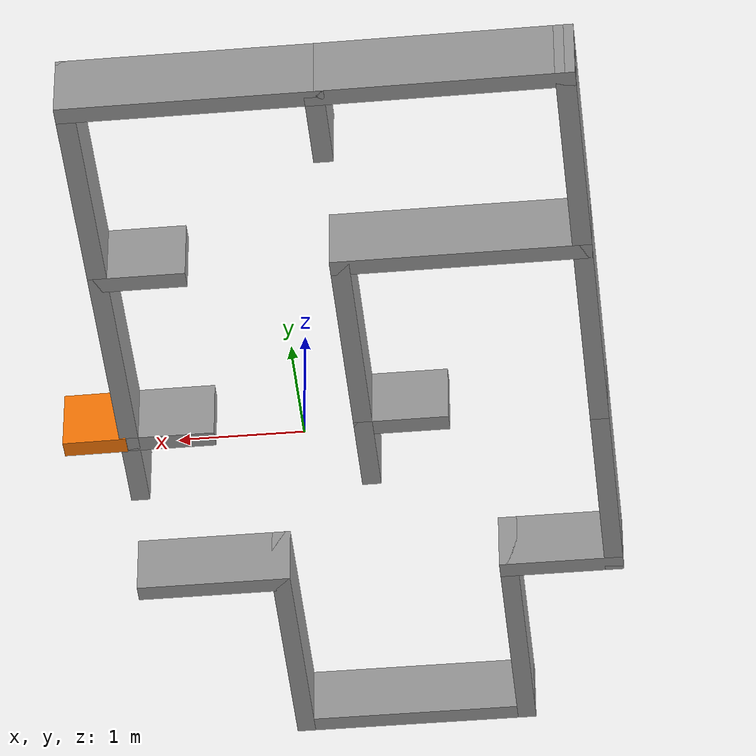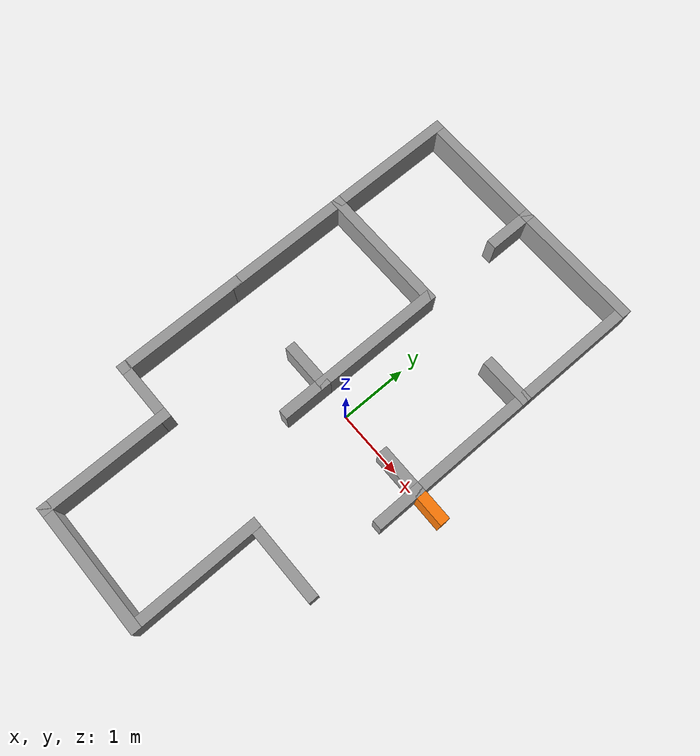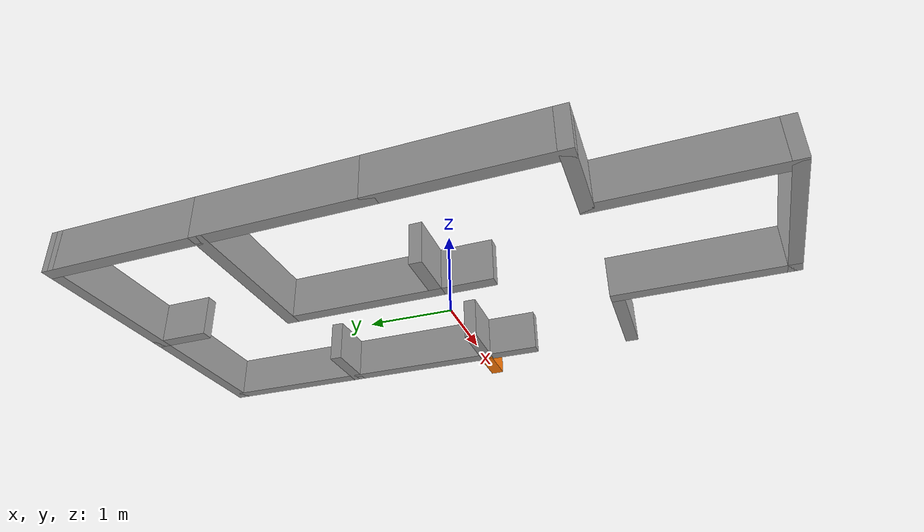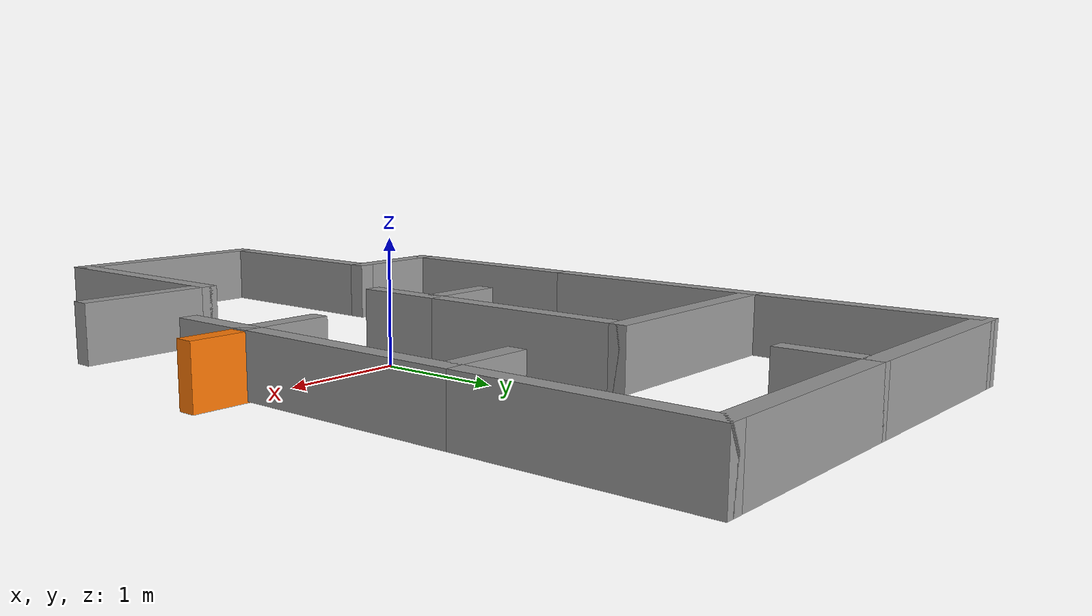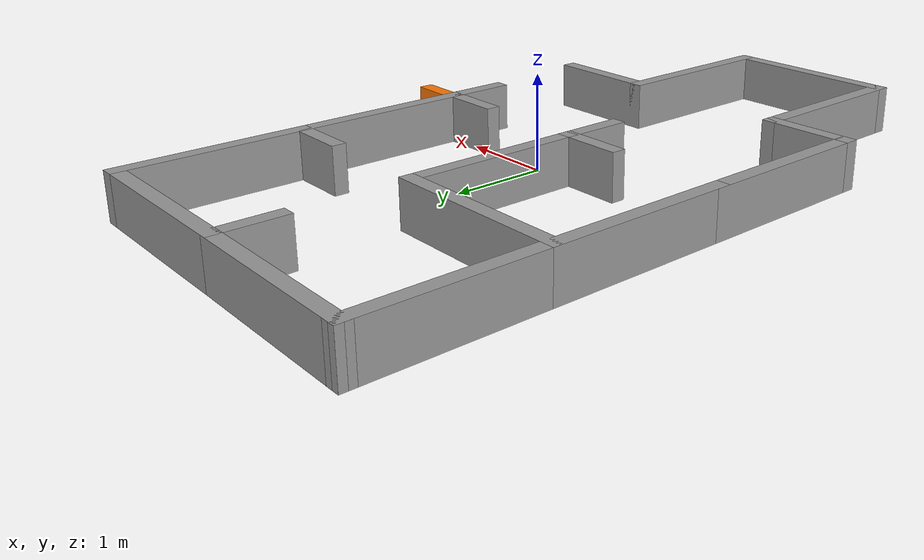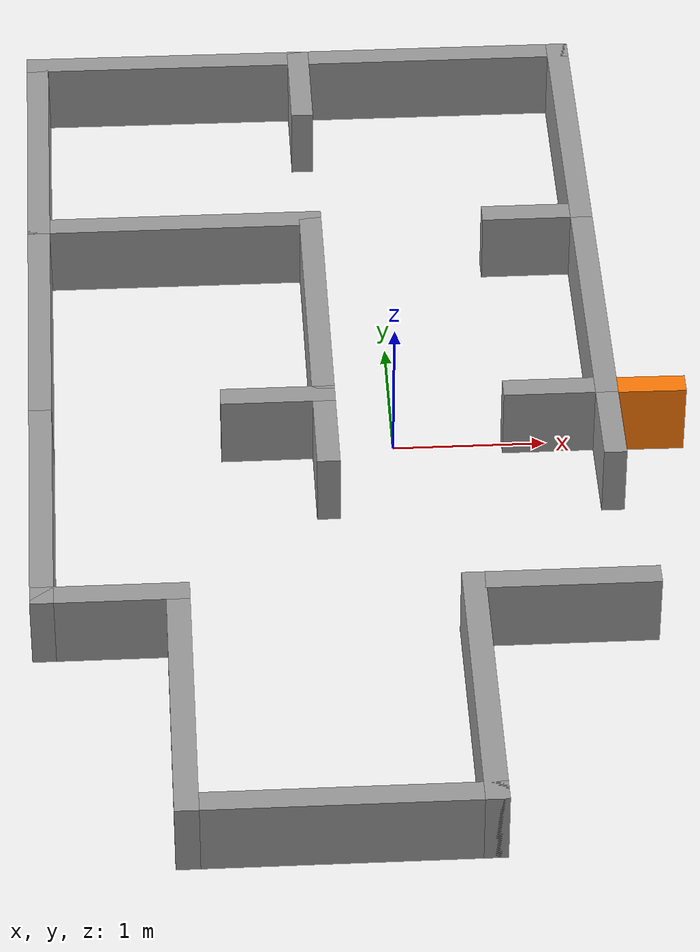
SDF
<?xml version='1.0'?>
<sdf version='1.6'>
  <model name='enclosed_maze'>
    <link name='Wall_0'>
      <pose frame=''>-1.46184 -2.77516 0 0 -0 1.5708</pose>
      <self_collide>0</self_collide>
      <enable_wind>0</enable_wind>
      <kinematic>0</kinematic>
      <visual name='Wall_0_Visual'>
        <pose frame=''>0 0 0.25 0 -0 0</pose>
        <geometry>
          <box>
            <size>2 0.15 0.5</size>
          </box>
        </geometry>
        <material>
          <script>
            <uri>file://media/materials/scripts/gazebo.material</uri>
            <name>Gazebo/Grey</name>
          </script>
          <ambient>1 1 1 1</ambient>
        </material>
        <meta>
          <layer>0</layer>
        </meta>
        <transparency>0</transparency>
        <cast_shadows>1</cast_shadows>
      </visual>
      <collision name='Wall_0_Collision'>
        <laser_retro>0</laser_retro>
        <max_contacts>10</max_contacts>
        <pose frame=''>0 0 0.25 0 -0 0</pose>
        <geometry>
          <box>
            <size>2 0.15 0.5</size>
          </box>
        </geometry>
        <surface>
          <friction>
            <ode>
              <mu>1</mu>
              <mu2>1</mu2>
              <fdir1>0 0 0</fdir1>
              <slip1>0</slip1>
              <slip2>0</slip2>
            </ode>
            <torsional>
              <coefficient>1</coefficient>
              <patch_radius>0</patch_radius>
              <surface_radius>0</surface_radius>
              <use_patch_radius>1</use_patch_radius>
              <ode>
                <slip>0</slip>
              </ode>
            </torsional>
          </friction>
          <bounce>
            <restitution_coefficient>0</restitution_coefficient>
            <threshold>1e+06</threshold>
          </bounce>
          <contact>
            <collide_without_contact>0</collide_without_contact>
            <collide_without_contact_bitmask>1</collide_without_contact_bitmask>
            <collide_bitmask>1</collide_bitmask>
            <ode>
              <soft_cfm>0</soft_cfm>
              <soft_erp>0.2</soft_erp>
              <kp>1e+13</kp>
              <kd>1</kd>
              <max_vel>0.01</max_vel>
              <min_depth>0</min_depth>
            </ode>
            <bullet>
              <split_impulse>1</split_impulse>
              <split_impulse_penetration_threshold>-0.01</split_impulse_penetration_threshold>
              <soft_cfm>0</soft_cfm>
              <soft_erp>0.2</soft_erp>
              <kp>1e+13</kp>
              <kd>1</kd>
            </bullet>
          </contact>
        </surface>
      </collision>
    </link>
    <link name='Wall_10'>
      <pose frame=''>-2.31184 0.924838 0 0 -0 1.5708</pose>
      <self_collide>0</self_collide>
      <enable_wind>0</enable_wind>
      <kinematic>0</kinematic>
      <visual name='Wall_10_Visual'>
        <pose frame=''>0 0 0.25 0 -0 0</pose>
        <geometry>
          <box>
            <size>2 0.15 0.5</size>
          </box>
        </geometry>
        <material>
          <script>
            <uri>file://media/materials/scripts/gazebo.material</uri>
            <name>Gazebo/Grey</name>
          </script>
          <ambient>1 1 1 1</ambient>
        </material>
        <meta>
          <layer>0</layer>
        </meta>
        <transparency>0</transparency>
        <cast_shadows>1</cast_shadows>
      </visual>
      <collision name='Wall_10_Collision'>
        <laser_retro>0</laser_retro>
        <max_contacts>10</max_contacts>
        <pose frame=''>0 0 0.25 0 -0 0</pose>
        <geometry>
          <box>
            <size>2 0.15 0.5</size>
          </box>
        </geometry>
        <surface>
          <friction>
            <ode>
              <mu>1</mu>
              <mu2>1</mu2>
              <fdir1>0 0 0</fdir1>
              <slip1>0</slip1>
              <slip2>0</slip2>
            </ode>
            <torsional>
              <coefficient>1</coefficient>
              <patch_radius>0</patch_radius>
              <surface_radius>0</surface_radius>
              <use_patch_radius>1</use_patch_radius>
              <ode>
                <slip>0</slip>
              </ode>
            </torsional>
          </friction>
          <bounce>
            <restitution_coefficient>0</restitution_coefficient>
            <threshold>1e+06</threshold>
          </bounce>
          <contact>
            <collide_without_contact>0</collide_without_contact>
            <collide_without_contact_bitmask>1</collide_without_contact_bitmask>
            <collide_bitmask>1</collide_bitmask>
            <ode>
              <soft_cfm>0</soft_cfm>
              <soft_erp>0.2</soft_erp>
              <kp>1e+13</kp>
              <kd>1</kd>
              <max_vel>0.01</max_vel>
              <min_depth>0</min_depth>
            </ode>
            <bullet>
              <split_impulse>1</split_impulse>
              <split_impulse_penetration_threshold>-0.01</split_impulse_penetration_threshold>
              <soft_cfm>0</soft_cfm>
              <soft_erp>0.2</soft_erp>
              <kp>1e+13</kp>
              <kd>1</kd>
            </bullet>
          </contact>
        </surface>
      </collision>
    </link>
    <link name='Wall_12'>
      <pose frame=''>-2.31184 2.77484 0 0 -0 1.5708</pose>
      <self_collide>0</self_collide>
      <enable_wind>0</enable_wind>
      <kinematic>0</kinematic>
      <visual name='Wall_12_Visual'>
        <pose frame=''>0 0 0.25 0 -0 0</pose>
        <geometry>
          <box>
            <size>2 0.15 0.5</size>
          </box>
        </geometry>
        <material>
          <script>
            <uri>file://media/materials/scripts/gazebo.material</uri>
            <name>Gazebo/Grey</name>
          </script>
          <ambient>1 1 1 1</ambient>
        </material>
        <meta>
          <layer>0</layer>
        </meta>
        <transparency>0</transparency>
        <cast_shadows>1</cast_shadows>
      </visual>
      <collision name='Wall_12_Collision'>
        <laser_retro>0</laser_retro>
        <max_contacts>10</max_contacts>
        <pose frame=''>0 0 0.25 0 -0 0</pose>
        <geometry>
          <box>
            <size>2 0.15 0.5</size>
          </box>
        </geometry>
        <surface>
          <friction>
            <ode>
              <mu>1</mu>
              <mu2>1</mu2>
              <fdir1>0 0 0</fdir1>
              <slip1>0</slip1>
              <slip2>0</slip2>
            </ode>
            <torsional>
              <coefficient>1</coefficient>
              <patch_radius>0</patch_radius>
              <surface_radius>0</surface_radius>
              <use_patch_radius>1</use_patch_radius>
              <ode>
                <slip>0</slip>
              </ode>
            </torsional>
          </friction>
          <bounce>
            <restitution_coefficient>0</restitution_coefficient>
            <threshold>1e+06</threshold>
          </bounce>
          <contact>
            <collide_without_contact>0</collide_without_contact>
            <collide_without_contact_bitmask>1</collide_without_contact_bitmask>
            <collide_bitmask>1</collide_bitmask>
            <ode>
              <soft_cfm>0</soft_cfm>
              <soft_erp>0.2</soft_erp>
              <kp>1e+13</kp>
              <kd>1</kd>
              <max_vel>0.01</max_vel>
              <min_depth>0</min_depth>
            </ode>
            <bullet>
              <split_impulse>1</split_impulse>
              <split_impulse_penetration_threshold>-0.01</split_impulse_penetration_threshold>
              <soft_cfm>0</soft_cfm>
              <soft_erp>0.2</soft_erp>
              <kp>1e+13</kp>
              <kd>1</kd>
            </bullet>
          </contact>
        </surface>
      </collision>
    </link>
    <link name='Wall_2'>
      <pose frame=''>-0.536842 -3.70016 0 0 -0 0</pose>
      <self_collide>0</self_collide>
      <enable_wind>0</enable_wind>
      <kinematic>0</kinematic>
      <visual name='Wall_2_Visual'>
        <pose frame=''>0 0 0.25 0 -0 0</pose>
        <geometry>
          <box>
            <size>2 0.15 0.5</size>
          </box>
        </geometry>
        <material>
          <script>
            <uri>file://media/materials/scripts/gazebo.material</uri>
            <name>Gazebo/Grey</name>
          </script>
          <ambient>1 1 1 1</ambient>
        </material>
        <meta>
          <layer>0</layer>
        </meta>
        <transparency>0</transparency>
        <cast_shadows>1</cast_shadows>
      </visual>
      <collision name='Wall_2_Collision'>
        <laser_retro>0</laser_retro>
        <max_contacts>10</max_contacts>
        <pose frame=''>0 0 0.25 0 -0 0</pose>
        <geometry>
          <box>
            <size>2 0.15 0.5</size>
          </box>
        </geometry>
        <surface>
          <friction>
            <ode>
              <mu>1</mu>
              <mu2>1</mu2>
              <fdir1>0 0 0</fdir1>
              <slip1>0</slip1>
              <slip2>0</slip2>
            </ode>
            <torsional>
              <coefficient>1</coefficient>
              <patch_radius>0</patch_radius>
              <surface_radius>0</surface_radius>
              <use_patch_radius>1</use_patch_radius>
              <ode>
                <slip>0</slip>
              </ode>
            </torsional>
          </friction>
          <bounce>
            <restitution_coefficient>0</restitution_coefficient>
            <threshold>1e+06</threshold>
          </bounce>
          <contact>
            <collide_without_contact>0</collide_without_contact>
            <collide_without_contact_bitmask>1</collide_without_contact_bitmask>
            <collide_bitmask>1</collide_bitmask>
            <ode>
              <soft_cfm>0</soft_cfm>
              <soft_erp>0.2</soft_erp>
              <kp>1e+13</kp>
              <kd>1</kd>
              <max_vel>0.01</max_vel>
              <min_depth>0</min_depth>
            </ode>
            <bullet>
              <split_impulse>1</split_impulse>
              <split_impulse_penetration_threshold>-0.01</split_impulse_penetration_threshold>
              <soft_cfm>0</soft_cfm>
              <soft_erp>0.2</soft_erp>
              <kp>1e+13</kp>
              <kd>1</kd>
            </bullet>
          </contact>
        </surface>
      </collision>
    </link>
    <link name='Wall_22'>
      <pose frame=''>-1.38684 1.84984 0 0 -0 0</pose>
      <self_collide>0</self_collide>
      <enable_wind>0</enable_wind>
      <kinematic>0</kinematic>
      <visual name='Wall_22_Visual'>
        <pose frame=''>0 0 0.25 0 -0 0</pose>
        <geometry>
          <box>
            <size>2 0.15 0.5</size>
          </box>
        </geometry>
        <material>
          <script>
            <uri>file://media/materials/scripts/gazebo.material</uri>
            <name>Gazebo/Grey</name>
          </script>
          <ambient>1 1 1 1</ambient>
        </material>
        <meta>
          <layer>0</layer>
        </meta>
        <transparency>0</transparency>
        <cast_shadows>1</cast_shadows>
      </visual>
      <collision name='Wall_22_Collision'>
        <laser_retro>0</laser_retro>
        <max_contacts>10</max_contacts>
        <pose frame=''>0 0 0.25 0 -0 0</pose>
        <geometry>
          <box>
            <size>2 0.15 0.5</size>
          </box>
        </geometry>
        <surface>
          <friction>
            <ode>
              <mu>1</mu>
              <mu2>1</mu2>
              <fdir1>0 0 0</fdir1>
              <slip1>0</slip1>
              <slip2>0</slip2>
            </ode>
            <torsional>
              <coefficient>1</coefficient>
              <patch_radius>0</patch_radius>
              <surface_radius>0</surface_radius>
              <use_patch_radius>1</use_patch_radius>
              <ode>
                <slip>0</slip>
              </ode>
            </torsional>
          </friction>
          <bounce>
            <restitution_coefficient>0</restitution_coefficient>
            <threshold>1e+06</threshold>
          </bounce>
          <contact>
            <collide_without_contact>0</collide_without_contact>
            <collide_without_contact_bitmask>1</collide_without_contact_bitmask>
            <collide_bitmask>1</collide_bitmask>
            <ode>
              <soft_cfm>0</soft_cfm>
              <soft_erp>0.2</soft_erp>
              <kp>1e+13</kp>
              <kd>1</kd>
              <max_vel>0.01</max_vel>
              <min_depth>0</min_depth>
            </ode>
            <bullet>
              <split_impulse>1</split_impulse>
              <split_impulse_penetration_threshold>-0.01</split_impulse_penetration_threshold>
              <soft_cfm>0</soft_cfm>
              <soft_erp>0.2</soft_erp>
              <kp>1e+13</kp>
              <kd>1</kd>
            </bullet>
          </contact>
        </surface>
      </collision>
    </link>
    <link name='Wall_4'>
      <pose frame=''>0.388158 -2.77516 0 0 -0 1.5708</pose>
      <self_collide>0</self_collide>
      <enable_wind>0</enable_wind>
      <kinematic>0</kinematic>
      <visual name='Wall_4_Visual'>
        <pose frame=''>0 0 0.25 0 -0 0</pose>
        <geometry>
          <box>
            <size>2 0.15 0.5</size>
          </box>
        </geometry>
        <material>
          <script>
            <uri>file://media/materials/scripts/gazebo.material</uri>
            <name>Gazebo/Grey</name>
          </script>
          <ambient>1 1 1 1</ambient>
        </material>
        <meta>
          <layer>0</layer>
        </meta>
        <transparency>0</transparency>
        <cast_shadows>1</cast_shadows>
      </visual>
      <collision name='Wall_4_Collision'>
        <laser_retro>0</laser_retro>
        <max_contacts>10</max_contacts>
        <pose frame=''>0 0 0.25 0 -0 0</pose>
        <geometry>
          <box>
            <size>2 0.15 0.5</size>
          </box>
        </geometry>
        <surface>
          <friction>
            <ode>
              <mu>1</mu>
              <mu2>1</mu2>
              <fdir1>0 0 0</fdir1>
              <slip1>0</slip1>
              <slip2>0</slip2>
            </ode>
            <torsional>
              <coefficient>1</coefficient>
              <patch_radius>0</patch_radius>
              <surface_radius>0</surface_radius>
              <use_patch_radius>1</use_patch_radius>
              <ode>
                <slip>0</slip>
              </ode>
            </torsional>
          </friction>
          <bounce>
            <restitution_coefficient>0</restitution_coefficient>
            <threshold>1e+06</threshold>
          </bounce>
          <contact>
            <collide_without_contact>0</collide_without_contact>
            <collide_without_contact_bitmask>1</collide_without_contact_bitmask>
            <collide_bitmask>1</collide_bitmask>
            <ode>
              <soft_cfm>0</soft_cfm>
              <soft_erp>0.2</soft_erp>
              <kp>1e+13</kp>
              <kd>1</kd>
              <max_vel>0.01</max_vel>
              <min_depth>0</min_depth>
            </ode>
            <bullet>
              <split_impulse>1</split_impulse>
              <split_impulse_penetration_threshold>-0.01</split_impulse_penetration_threshold>
              <soft_cfm>0</soft_cfm>
              <soft_erp>0.2</soft_erp>
              <kp>1e+13</kp>
              <kd>1</kd>
            </bullet>
          </contact>
        </surface>
      </collision>
    </link>
    <link name='Wall_45'>
      <pose frame=''>-1.38684 3.69584 0 0 0 -0.004324</pose>
      <self_collide>0</self_collide>
      <enable_wind>0</enable_wind>
      <kinematic>0</kinematic>
      <visual name='Wall_45_Visual'>
        <pose frame=''>0 0 0.25 0 -0 0</pose>
        <geometry>
          <box>
            <size>2 0.15 0.5</size>
          </box>
        </geometry>
        <material>
          <script>
            <uri>file://media/materials/scripts/gazebo.material</uri>
            <name>Gazebo/Grey</name>
          </script>
          <ambient>1 1 1 1</ambient>
        </material>
        <meta>
          <layer>0</layer>
        </meta>
        <transparency>0</transparency>
        <cast_shadows>1</cast_shadows>
      </visual>
      <collision name='Wall_45_Collision'>
        <laser_retro>0</laser_retro>
        <max_contacts>10</max_contacts>
        <pose frame=''>0 0 0.25 0 -0 0</pose>
        <geometry>
          <box>
            <size>2 0.15 0.5</size>
          </box>
        </geometry>
        <surface>
          <friction>
            <ode>
              <mu>1</mu>
              <mu2>1</mu2>
              <fdir1>0 0 0</fdir1>
              <slip1>0</slip1>
              <slip2>0</slip2>
            </ode>
            <torsional>
              <coefficient>1</coefficient>
              <patch_radius>0</patch_radius>
              <surface_radius>0</surface_radius>
              <use_patch_radius>1</use_patch_radius>
              <ode>
                <slip>0</slip>
              </ode>
            </torsional>
          </friction>
          <bounce>
            <restitution_coefficient>0</restitution_coefficient>
            <threshold>1e+06</threshold>
          </bounce>
          <contact>
            <collide_without_contact>0</collide_without_contact>
            <collide_without_contact_bitmask>1</collide_without_contact_bitmask>
            <collide_bitmask>1</collide_bitmask>
            <ode>
              <soft_cfm>0</soft_cfm>
              <soft_erp>0.2</soft_erp>
              <kp>1e+13</kp>
              <kd>1</kd>
              <max_vel>0.01</max_vel>
              <min_depth>0</min_depth>
            </ode>
            <bullet>
              <split_impulse>1</split_impulse>
              <split_impulse_penetration_threshold>-0.01</split_impulse_penetration_threshold>
              <soft_cfm>0</soft_cfm>
              <soft_erp>0.2</soft_erp>
              <kp>1e+13</kp>
              <kd>1</kd>
            </bullet>
          </contact>
        </surface>
      </collision>
    </link>
    <link name='Wall_47'>
      <pose frame=''>-0.461843 3.39184 0 0 0 -1.5708</pose>
      <self_collide>0</self_collide>
      <enable_wind>0</enable_wind>
      <kinematic>0</kinematic>
      <visual name='Wall_47_Visual'>
        <pose frame=''>0 0 0.25 0 -0 0</pose>
        <geometry>
          <box>
            <size>0.75 0.15 0.5</size>
          </box>
        </geometry>
        <material>
          <script>
            <uri>file://media/materials/scripts/gazebo.material</uri>
            <name>Gazebo/Grey</name>
          </script>
          <ambient>1 1 1 1</ambient>
        </material>
        <meta>
          <layer>0</layer>
        </meta>
        <transparency>0</transparency>
        <cast_shadows>1</cast_shadows>
      </visual>
      <collision name='Wall_47_Collision'>
        <laser_retro>0</laser_retro>
        <max_contacts>10</max_contacts>
        <pose frame=''>0 0 0.25 0 -0 0</pose>
        <geometry>
          <box>
            <size>0.75 0.15 0.5</size>
          </box>
        </geometry>
        <surface>
          <friction>
            <ode>
              <mu>1</mu>
              <mu2>1</mu2>
              <fdir1>0 0 0</fdir1>
              <slip1>0</slip1>
              <slip2>0</slip2>
            </ode>
            <torsional>
              <coefficient>1</coefficient>
              <patch_radius>0</patch_radius>
              <surface_radius>0</surface_radius>
              <use_patch_radius>1</use_patch_radius>
              <ode>
                <slip>0</slip>
              </ode>
            </torsional>
          </friction>
          <bounce>
            <restitution_coefficient>0</restitution_coefficient>
            <threshold>1e+06</threshold>
          </bounce>
          <contact>
            <collide_without_contact>0</collide_without_contact>
            <collide_without_contact_bitmask>1</collide_without_contact_bitmask>
            <collide_bitmask>1</collide_bitmask>
            <ode>
              <soft_cfm>0</soft_cfm>
              <soft_erp>0.2</soft_erp>
              <kp>1e+13</kp>
              <kd>1</kd>
              <max_vel>0.01</max_vel>
              <min_depth>0</min_depth>
            </ode>
            <bullet>
              <split_impulse>1</split_impulse>
              <split_impulse_penetration_threshold>-0.01</split_impulse_penetration_threshold>
              <soft_cfm>0</soft_cfm>
              <soft_erp>0.2</soft_erp>
              <kp>1e+13</kp>
              <kd>1</kd>
            </bullet>
          </contact>
        </surface>
      </collision>
    </link>
    <link name='Wall_49'>
      <pose frame=''>0.463157 3.69184 0 0 -0 0</pose>
      <self_collide>0</self_collide>
      <enable_wind>0</enable_wind>
      <kinematic>0</kinematic>
      <visual name='Wall_49_Visual'>
        <pose frame=''>0 0 0.25 0 -0 0</pose>
        <geometry>
          <box>
            <size>2 0.15 0.5</size>
          </box>
        </geometry>
        <material>
          <script>
            <uri>file://media/materials/scripts/gazebo.material</uri>
            <name>Gazebo/Grey</name>
          </script>
          <ambient>1 1 1 1</ambient>
        </material>
        <meta>
          <layer>0</layer>
        </meta>
        <transparency>0</transparency>
        <cast_shadows>1</cast_shadows>
      </visual>
      <collision name='Wall_49_Collision'>
        <laser_retro>0</laser_retro>
        <max_contacts>10</max_contacts>
        <pose frame=''>0 0 0.25 0 -0 0</pose>
        <geometry>
          <box>
            <size>2 0.15 0.5</size>
          </box>
        </geometry>
        <surface>
          <friction>
            <ode>
              <mu>1</mu>
              <mu2>1</mu2>
              <fdir1>0 0 0</fdir1>
              <slip1>0</slip1>
              <slip2>0</slip2>
            </ode>
            <torsional>
              <coefficient>1</coefficient>
              <patch_radius>0</patch_radius>
              <surface_radius>0</surface_radius>
              <use_patch_radius>1</use_patch_radius>
              <ode>
                <slip>0</slip>
              </ode>
            </torsional>
          </friction>
          <bounce>
            <restitution_coefficient>0</restitution_coefficient>
            <threshold>1e+06</threshold>
          </bounce>
          <contact>
            <collide_without_contact>0</collide_without_contact>
            <collide_without_contact_bitmask>1</collide_without_contact_bitmask>
            <collide_bitmask>1</collide_bitmask>
            <ode>
              <soft_cfm>0</soft_cfm>
              <soft_erp>0.2</soft_erp>
              <kp>1e+13</kp>
              <kd>1</kd>
              <max_vel>0.01</max_vel>
              <min_depth>0</min_depth>
            </ode>
            <bullet>
              <split_impulse>1</split_impulse>
              <split_impulse_penetration_threshold>-0.01</split_impulse_penetration_threshold>
              <soft_cfm>0</soft_cfm>
              <soft_erp>0.2</soft_erp>
              <kp>1e+13</kp>
              <kd>1</kd>
            </bullet>
          </contact>
        </surface>
      </collision>
    </link>
    <link name='Wall_50'>
      <pose frame=''>1.38816 2.76684 0 0 0 -1.5708</pose>
      <self_collide>0</self_collide>
      <enable_wind>0</enable_wind>
      <kinematic>0</kinematic>
      <visual name='Wall_50_Visual'>
        <pose frame=''>0 0 0.25 0 -0 0</pose>
        <geometry>
          <box>
            <size>2 0.15 0.5</size>
          </box>
        </geometry>
        <material>
          <script>
            <uri>file://media/materials/scripts/gazebo.material</uri>
            <name>Gazebo/Grey</name>
          </script>
          <ambient>1 1 1 1</ambient>
        </material>
        <meta>
          <layer>0</layer>
        </meta>
        <transparency>0</transparency>
        <cast_shadows>1</cast_shadows>
      </visual>
      <collision name='Wall_50_Collision'>
        <laser_retro>0</laser_retro>
        <max_contacts>10</max_contacts>
        <pose frame=''>0 0 0.25 0 -0 0</pose>
        <geometry>
          <box>
            <size>2 0.15 0.5</size>
          </box>
        </geometry>
        <surface>
          <friction>
            <ode>
              <mu>1</mu>
              <mu2>1</mu2>
              <fdir1>0 0 0</fdir1>
              <slip1>0</slip1>
              <slip2>0</slip2>
            </ode>
            <torsional>
              <coefficient>1</coefficient>
              <patch_radius>0</patch_radius>
              <surface_radius>0</surface_radius>
              <use_patch_radius>1</use_patch_radius>
              <ode>
                <slip>0</slip>
              </ode>
            </torsional>
          </friction>
          <bounce>
            <restitution_coefficient>0</restitution_coefficient>
            <threshold>1e+06</threshold>
          </bounce>
          <contact>
            <collide_without_contact>0</collide_without_contact>
            <collide_without_contact_bitmask>1</collide_without_contact_bitmask>
            <collide_bitmask>1</collide_bitmask>
            <ode>
              <soft_cfm>0</soft_cfm>
              <soft_erp>0.2</soft_erp>
              <kp>1e+13</kp>
              <kd>1</kd>
              <max_vel>0.01</max_vel>
              <min_depth>0</min_depth>
            </ode>
            <bullet>
              <split_impulse>1</split_impulse>
              <split_impulse_penetration_threshold>-0.01</split_impulse_penetration_threshold>
              <soft_cfm>0</soft_cfm>
              <soft_erp>0.2</soft_erp>
              <kp>1e+13</kp>
              <kd>1</kd>
            </bullet>
          </contact>
        </surface>
      </collision>
    </link>
    <link name='Wall_51'>
      <pose frame=''>1.08816 1.84184 0 0 -0 3.14159</pose>
      <self_collide>0</self_collide>
      <enable_wind>0</enable_wind>
      <kinematic>0</kinematic>
      <visual name='Wall_51_Visual'>
        <pose frame=''>0 0 0.25 0 -0 0</pose>
        <geometry>
          <box>
            <size>0.75 0.15 0.5</size>
          </box>
        </geometry>
        <material>
          <script>
            <uri>file://media/materials/scripts/gazebo.material</uri>
            <name>Gazebo/Grey</name>
          </script>
          <ambient>1 1 1 1</ambient>
        </material>
        <meta>
          <layer>0</layer>
        </meta>
        <transparency>0</transparency>
        <cast_shadows>1</cast_shadows>
      </visual>
      <collision name='Wall_51_Collision'>
        <laser_retro>0</laser_retro>
        <max_contacts>10</max_contacts>
        <pose frame=''>0 0 0.25 0 -0 0</pose>
        <geometry>
          <box>
            <size>0.75 0.15 0.5</size>
          </box>
        </geometry>
        <surface>
          <friction>
            <ode>
              <mu>1</mu>
              <mu2>1</mu2>
              <fdir1>0 0 0</fdir1>
              <slip1>0</slip1>
              <slip2>0</slip2>
            </ode>
            <torsional>
              <coefficient>1</coefficient>
              <patch_radius>0</patch_radius>
              <surface_radius>0</surface_radius>
              <use_patch_radius>1</use_patch_radius>
              <ode>
                <slip>0</slip>
              </ode>
            </torsional>
          </friction>
          <bounce>
            <restitution_coefficient>0</restitution_coefficient>
            <threshold>1e+06</threshold>
          </bounce>
          <contact>
            <collide_without_contact>0</collide_without_contact>
            <collide_without_contact_bitmask>1</collide_without_contact_bitmask>
            <collide_bitmask>1</collide_bitmask>
            <ode>
              <soft_cfm>0</soft_cfm>
              <soft_erp>0.2</soft_erp>
              <kp>1e+13</kp>
              <kd>1</kd>
              <max_vel>0.01</max_vel>
              <min_depth>0</min_depth>
            </ode>
            <bullet>
              <split_impulse>1</split_impulse>
              <split_impulse_penetration_threshold>-0.01</split_impulse_penetration_threshold>
              <soft_cfm>0</soft_cfm>
              <soft_erp>0.2</soft_erp>
              <kp>1e+13</kp>
              <kd>1</kd>
            </bullet>
          </contact>
        </surface>
      </collision>
    </link>
    <link name='Wall_61'>
      <pose frame=''>1.38816 0.916838 0 0 0 -1.5708</pose>
      <self_collide>0</self_collide>
      <enable_wind>0</enable_wind>
      <kinematic>0</kinematic>
      <visual name='Wall_61_Visual'>
        <pose frame=''>0 0 0.25 0 -0 0</pose>
        <geometry>
          <box>
            <size>2 0.15 0.5</size>
          </box>
        </geometry>
        <material>
          <script>
            <uri>file://media/materials/scripts/gazebo.material</uri>
            <name>Gazebo/Grey</name>
          </script>
          <ambient>1 1 1 1</ambient>
        </material>
        <meta>
          <layer>0</layer>
        </meta>
        <transparency>0</transparency>
        <cast_shadows>1</cast_shadows>
      </visual>
      <collision name='Wall_61_Collision'>
        <laser_retro>0</laser_retro>
        <max_contacts>10</max_contacts>
        <pose frame=''>0 0 0.25 0 -0 0</pose>
        <geometry>
          <box>
            <size>2 0.15 0.5</size>
          </box>
        </geometry>
        <surface>
          <friction>
            <ode>
              <mu>1</mu>
              <mu2>1</mu2>
              <fdir1>0 0 0</fdir1>
              <slip1>0</slip1>
              <slip2>0</slip2>
            </ode>
            <torsional>
              <coefficient>1</coefficient>
              <patch_radius>0</patch_radius>
              <surface_radius>0</surface_radius>
              <use_patch_radius>1</use_patch_radius>
              <ode>
                <slip>0</slip>
              </ode>
            </torsional>
          </friction>
          <bounce>
            <restitution_coefficient>0</restitution_coefficient>
            <threshold>1e+06</threshold>
          </bounce>
          <contact>
            <collide_without_contact>0</collide_without_contact>
            <collide_without_contact_bitmask>1</collide_without_contact_bitmask>
            <collide_bitmask>1</collide_bitmask>
            <ode>
              <soft_cfm>0</soft_cfm>
              <soft_erp>0.2</soft_erp>
              <kp>1e+13</kp>
              <kd>1</kd>
              <max_vel>0.01</max_vel>
              <min_depth>0</min_depth>
            </ode>
            <bullet>
              <split_impulse>1</split_impulse>
              <split_impulse_penetration_threshold>-0.01</split_impulse_penetration_threshold>
              <soft_cfm>0</soft_cfm>
              <soft_erp>0.2</soft_erp>
              <kp>1e+13</kp>
              <kd>1</kd>
            </bullet>
          </contact>
        </surface>
      </collision>
    </link>
    <link name='Wall_63'>
      <pose frame=''>-0.461843 0.924838 0 0 0 -1.5708</pose>
      <self_collide>0</self_collide>
      <enable_wind>0</enable_wind>
      <kinematic>0</kinematic>
      <visual name='Wall_63_Visual'>
        <pose frame=''>0 0 0.25 0 -0 0</pose>
        <geometry>
          <box>
            <size>2 0.15 0.5</size>
          </box>
        </geometry>
        <material>
          <script>
            <uri>file://media/materials/scripts/gazebo.material</uri>
            <name>Gazebo/Grey</name>
          </script>
          <ambient>1 1 1 1</ambient>
        </material>
        <meta>
          <layer>0</layer>
        </meta>
        <transparency>0</transparency>
        <cast_shadows>1</cast_shadows>
      </visual>
      <collision name='Wall_63_Collision'>
        <laser_retro>0</laser_retro>
        <max_contacts>10</max_contacts>
        <pose frame=''>0 0 0.25 0 -0 0</pose>
        <geometry>
          <box>
            <size>2 0.15 0.5</size>
          </box>
        </geometry>
        <surface>
          <friction>
            <ode>
              <mu>1</mu>
              <mu2>1</mu2>
              <fdir1>0 0 0</fdir1>
              <slip1>0</slip1>
              <slip2>0</slip2>
            </ode>
            <torsional>
              <coefficient>1</coefficient>
              <patch_radius>0</patch_radius>
              <surface_radius>0</surface_radius>
              <use_patch_radius>1</use_patch_radius>
              <ode>
                <slip>0</slip>
              </ode>
            </torsional>
          </friction>
          <bounce>
            <restitution_coefficient>0</restitution_coefficient>
            <threshold>1e+06</threshold>
          </bounce>
          <contact>
            <collide_without_contact>0</collide_without_contact>
            <collide_without_contact_bitmask>1</collide_without_contact_bitmask>
            <collide_bitmask>1</collide_bitmask>
            <ode>
              <soft_cfm>0</soft_cfm>
              <soft_erp>0.2</soft_erp>
              <kp>1e+13</kp>
              <kd>1</kd>
              <max_vel>0.01</max_vel>
              <min_depth>0</min_depth>
            </ode>
            <bullet>
              <split_impulse>1</split_impulse>
              <split_impulse_penetration_threshold>-0.01</split_impulse_penetration_threshold>
              <soft_cfm>0</soft_cfm>
              <soft_erp>0.2</soft_erp>
              <kp>1e+13</kp>
              <kd>1</kd>
            </bullet>
          </contact>
        </surface>
      </collision>
    </link>
    <link name='Wall_66'>
      <pose frame=''>-0.761843 -0.000162 0 0 -0 3.14159</pose>
      <self_collide>0</self_collide>
      <enable_wind>0</enable_wind>
      <kinematic>0</kinematic>
      <visual name='Wall_66_Visual'>
        <pose frame=''>0 0 0.25 0 -0 0</pose>
        <geometry>
          <box>
            <size>0.75 0.15 0.5</size>
          </box>
        </geometry>
        <material>
          <script>
            <uri>file://media/materials/scripts/gazebo.material</uri>
            <name>Gazebo/Grey</name>
          </script>
          <ambient>1 1 1 1</ambient>
        </material>
        <meta>
          <layer>0</layer>
        </meta>
        <transparency>0</transparency>
        <cast_shadows>1</cast_shadows>
      </visual>
      <collision name='Wall_66_Collision'>
        <laser_retro>0</laser_retro>
        <max_contacts>10</max_contacts>
        <pose frame=''>0 0 0.25 0 -0 0</pose>
        <geometry>
          <box>
            <size>0.75 0.15 0.5</size>
          </box>
        </geometry>
        <surface>
          <friction>
            <ode>
              <mu>1</mu>
              <mu2>1</mu2>
              <fdir1>0 0 0</fdir1>
              <slip1>0</slip1>
              <slip2>0</slip2>
            </ode>
            <torsional>
              <coefficient>1</coefficient>
              <patch_radius>0</patch_radius>
              <surface_radius>0</surface_radius>
              <use_patch_radius>1</use_patch_radius>
              <ode>
                <slip>0</slip>
              </ode>
            </torsional>
          </friction>
          <bounce>
            <restitution_coefficient>0</restitution_coefficient>
            <threshold>1e+06</threshold>
          </bounce>
          <contact>
            <collide_without_contact>0</collide_without_contact>
            <collide_without_contact_bitmask>1</collide_without_contact_bitmask>
            <collide_bitmask>1</collide_bitmask>
            <ode>
              <soft_cfm>0</soft_cfm>
              <soft_erp>0.2</soft_erp>
              <kp>1e+13</kp>
              <kd>1</kd>
              <max_vel>0.01</max_vel>
              <min_depth>0</min_depth>
            </ode>
            <bullet>
              <split_impulse>1</split_impulse>
              <split_impulse_penetration_threshold>-0.01</split_impulse_penetration_threshold>
              <soft_cfm>0</soft_cfm>
              <soft_erp>0.2</soft_erp>
              <kp>1e+13</kp>
              <kd>1</kd>
            </bullet>
          </contact>
        </surface>
      </collision>
    </link>
    <link name='Wall_68'>
      <pose frame=''>-0.461843 -0.300162 0 0 0 -1.5708</pose>
      <self_collide>0</self_collide>
      <enable_wind>0</enable_wind>
      <kinematic>0</kinematic>
      <visual name='Wall_68_Visual'>
        <pose frame=''>0 0 0.25 0 -0 0</pose>
        <geometry>
          <box>
            <size>0.75 0.15 0.5</size>
          </box>
        </geometry>
        <material>
          <script>
            <uri>file://media/materials/scripts/gazebo.material</uri>
            <name>Gazebo/Grey</name>
          </script>
          <ambient>1 1 1 1</ambient>
        </material>
        <meta>
          <layer>0</layer>
        </meta>
        <transparency>0</transparency>
        <cast_shadows>1</cast_shadows>
      </visual>
      <collision name='Wall_68_Collision'>
        <laser_retro>0</laser_retro>
        <max_contacts>10</max_contacts>
        <pose frame=''>0 0 0.25 0 -0 0</pose>
        <geometry>
          <box>
            <size>0.75 0.15 0.5</size>
          </box>
        </geometry>
        <surface>
          <friction>
            <ode>
              <mu>1</mu>
              <mu2>1</mu2>
              <fdir1>0 0 0</fdir1>
              <slip1>0</slip1>
              <slip2>0</slip2>
            </ode>
            <torsional>
              <coefficient>1</coefficient>
              <patch_radius>0</patch_radius>
              <surface_radius>0</surface_radius>
              <use_patch_radius>1</use_patch_radius>
              <ode>
                <slip>0</slip>
              </ode>
            </torsional>
          </friction>
          <bounce>
            <restitution_coefficient>0</restitution_coefficient>
            <threshold>1e+06</threshold>
          </bounce>
          <contact>
            <collide_without_contact>0</collide_without_contact>
            <collide_without_contact_bitmask>1</collide_without_contact_bitmask>
            <collide_bitmask>1</collide_bitmask>
            <ode>
              <soft_cfm>0</soft_cfm>
              <soft_erp>0.2</soft_erp>
              <kp>1e+13</kp>
              <kd>1</kd>
              <max_vel>0.01</max_vel>
              <min_depth>0</min_depth>
            </ode>
            <bullet>
              <split_impulse>1</split_impulse>
              <split_impulse_penetration_threshold>-0.01</split_impulse_penetration_threshold>
              <soft_cfm>0</soft_cfm>
              <soft_erp>0.2</soft_erp>
              <kp>1e+13</kp>
              <kd>1</kd>
            </bullet>
          </contact>
        </surface>
      </collision>
    </link>
    <link name='Wall_7'>
      <pose frame=''>-1.88684 -1.85016 0 0 -0 3.14159</pose>
      <self_collide>0</self_collide>
      <enable_wind>0</enable_wind>
      <kinematic>0</kinematic>
      <visual name='Wall_7_Visual'>
        <pose frame=''>0 0 0.25 0 -0 0</pose>
        <geometry>
          <box>
            <size>1 0.15 0.5</size>
          </box>
        </geometry>
        <material>
          <script>
            <uri>file://media/materials/scripts/gazebo.material</uri>
            <name>Gazebo/Grey</name>
          </script>
          <ambient>1 1 1 1</ambient>
        </material>
        <meta>
          <layer>0</layer>
        </meta>
        <transparency>0</transparency>
        <cast_shadows>1</cast_shadows>
      </visual>
      <collision name='Wall_7_Collision'>
        <laser_retro>0</laser_retro>
        <max_contacts>10</max_contacts>
        <pose frame=''>0 0 0.25 0 -0 0</pose>
        <geometry>
          <box>
            <size>1 0.15 0.5</size>
          </box>
        </geometry>
        <surface>
          <friction>
            <ode>
              <mu>1</mu>
              <mu2>1</mu2>
              <fdir1>0 0 0</fdir1>
              <slip1>0</slip1>
              <slip2>0</slip2>
            </ode>
            <torsional>
              <coefficient>1</coefficient>
              <patch_radius>0</patch_radius>
              <surface_radius>0</surface_radius>
              <use_patch_radius>1</use_patch_radius>
              <ode>
                <slip>0</slip>
              </ode>
            </torsional>
          </friction>
          <bounce>
            <restitution_coefficient>0</restitution_coefficient>
            <threshold>1e+06</threshold>
          </bounce>
          <contact>
            <collide_without_contact>0</collide_without_contact>
            <collide_without_contact_bitmask>1</collide_without_contact_bitmask>
            <collide_bitmask>1</collide_bitmask>
            <ode>
              <soft_cfm>0</soft_cfm>
              <soft_erp>0.2</soft_erp>
              <kp>1e+13</kp>
              <kd>1</kd>
              <max_vel>0.01</max_vel>
              <min_depth>0</min_depth>
            </ode>
            <bullet>
              <split_impulse>1</split_impulse>
              <split_impulse_penetration_threshold>-0.01</split_impulse_penetration_threshold>
              <soft_cfm>0</soft_cfm>
              <soft_erp>0.2</soft_erp>
              <kp>1e+13</kp>
              <kd>1</kd>
            </bullet>
          </contact>
        </surface>
      </collision>
    </link>
    <link name='Wall_70'>
      <pose frame=''>1.08816 -0.008162 0 0 -0 3.14159</pose>
      <self_collide>0</self_collide>
      <enable_wind>0</enable_wind>
      <kinematic>0</kinematic>
      <visual name='Wall_70_Visual'>
        <pose frame=''>0 0 0.25 0 -0 0</pose>
        <geometry>
          <box>
            <size>0.75 0.15 0.5</size>
          </box>
        </geometry>
        <material>
          <script>
            <uri>file://media/materials/scripts/gazebo.material</uri>
            <name>Gazebo/Grey</name>
          </script>
          <ambient>1 1 1 1</ambient>
        </material>
        <meta>
          <layer>0</layer>
        </meta>
        <transparency>0</transparency>
        <cast_shadows>1</cast_shadows>
      </visual>
      <collision name='Wall_70_Collision'>
        <laser_retro>0</laser_retro>
        <max_contacts>10</max_contacts>
        <pose frame=''>0 0 0.25 0 -0 0</pose>
        <geometry>
          <box>
            <size>0.75 0.15 0.5</size>
          </box>
        </geometry>
        <surface>
          <friction>
            <ode>
              <mu>1</mu>
              <mu2>1</mu2>
              <fdir1>0 0 0</fdir1>
              <slip1>0</slip1>
              <slip2>0</slip2>
            </ode>
            <torsional>
              <coefficient>1</coefficient>
              <patch_radius>0</patch_radius>
              <surface_radius>0</surface_radius>
              <use_patch_radius>1</use_patch_radius>
              <ode>
                <slip>0</slip>
              </ode>
            </torsional>
          </friction>
          <bounce>
            <restitution_coefficient>0</restitution_coefficient>
            <threshold>1e+06</threshold>
          </bounce>
          <contact>
            <collide_without_contact>0</collide_without_contact>
            <collide_without_contact_bitmask>1</collide_without_contact_bitmask>
            <collide_bitmask>1</collide_bitmask>
            <ode>
              <soft_cfm>0</soft_cfm>
              <soft_erp>0.2</soft_erp>
              <kp>1e+13</kp>
              <kd>1</kd>
              <max_vel>0.01</max_vel>
              <min_depth>0</min_depth>
            </ode>
            <bullet>
              <split_impulse>1</split_impulse>
              <split_impulse_penetration_threshold>-0.01</split_impulse_penetration_threshold>
              <soft_cfm>0</soft_cfm>
              <soft_erp>0.2</soft_erp>
              <kp>1e+13</kp>
              <kd>1</kd>
            </bullet>
          </contact>
        </surface>
      </collision>
    </link>
    <link name='Wall_72'>
      <pose frame=''>1.38816 -0.308162 0 0 0 -1.5708</pose>
      <self_collide>0</self_collide>
      <enable_wind>0</enable_wind>
      <kinematic>0</kinematic>
      <visual name='Wall_72_Visual'>
        <pose frame=''>0 0 0.25 0 -0 0</pose>
        <geometry>
          <box>
            <size>0.75 0.15 0.5</size>
          </box>
        </geometry>
        <material>
          <script>
            <uri>file://media/materials/scripts/gazebo.material</uri>
            <name>Gazebo/Grey</name>
          </script>
          <ambient>1 1 1 1</ambient>
        </material>
        <meta>
          <layer>0</layer>
        </meta>
        <transparency>0</transparency>
        <cast_shadows>1</cast_shadows>
      </visual>
      <collision name='Wall_72_Collision'>
        <laser_retro>0</laser_retro>
        <max_contacts>10</max_contacts>
        <pose frame=''>0 0 0.25 0 -0 0</pose>
        <geometry>
          <box>
            <size>0.75 0.15 0.5</size>
          </box>
        </geometry>
        <surface>
          <friction>
            <ode>
              <mu>1</mu>
              <mu2>1</mu2>
              <fdir1>0 0 0</fdir1>
              <slip1>0</slip1>
              <slip2>0</slip2>
            </ode>
            <torsional>
              <coefficient>1</coefficient>
              <patch_radius>0</patch_radius>
              <surface_radius>0</surface_radius>
              <use_patch_radius>1</use_patch_radius>
              <ode>
                <slip>0</slip>
              </ode>
            </torsional>
          </friction>
          <bounce>
            <restitution_coefficient>0</restitution_coefficient>
            <threshold>1e+06</threshold>
          </bounce>
          <contact>
            <collide_without_contact>0</collide_without_contact>
            <collide_without_contact_bitmask>1</collide_without_contact_bitmask>
            <collide_bitmask>1</collide_bitmask>
            <ode>
              <soft_cfm>0</soft_cfm>
              <soft_erp>0.2</soft_erp>
              <kp>1e+13</kp>
              <kd>1</kd>
              <max_vel>0.01</max_vel>
              <min_depth>0</min_depth>
            </ode>
            <bullet>
              <split_impulse>1</split_impulse>
              <split_impulse_penetration_threshold>-0.01</split_impulse_penetration_threshold>
              <soft_cfm>0</soft_cfm>
              <soft_erp>0.2</soft_erp>
              <kp>1e+13</kp>
              <kd>1</kd>
            </bullet>
          </contact>
        </surface>
      </collision>
    </link>
    <link name='Wall_74'>
      <pose frame=''>0.938157 -1.85016 0 0 -0 0</pose>
      <self_collide>0</self_collide>
      <enable_wind>0</enable_wind>
      <kinematic>0</kinematic>
      <visual name='Wall_74_Visual'>
        <pose frame=''>0 0 0.25 0 -0 0</pose>
        <geometry>
          <box>
            <size>1.25 0.15 0.5</size>
          </box>
        </geometry>
        <material>
          <script>
            <uri>file://media/materials/scripts/gazebo.material</uri>
            <name>Gazebo/Grey</name>
          </script>
          <ambient>1 1 1 1</ambient>
        </material>
        <meta>
          <layer>0</layer>
        </meta>
        <transparency>0</transparency>
        <cast_shadows>1</cast_shadows>
      </visual>
      <collision name='Wall_74_Collision'>
        <laser_retro>0</laser_retro>
        <max_contacts>10</max_contacts>
        <pose frame=''>0 0 0.25 0 -0 0</pose>
        <geometry>
          <box>
            <size>1.25 0.15 0.5</size>
          </box>
        </geometry>
        <surface>
          <friction>
            <ode>
              <mu>1</mu>
              <mu2>1</mu2>
              <fdir1>0 0 0</fdir1>
              <slip1>0</slip1>
              <slip2>0</slip2>
            </ode>
            <torsional>
              <coefficient>1</coefficient>
              <patch_radius>0</patch_radius>
              <surface_radius>0</surface_radius>
              <use_patch_radius>1</use_patch_radius>
              <ode>
                <slip>0</slip>
              </ode>
            </torsional>
          </friction>
          <bounce>
            <restitution_coefficient>0</restitution_coefficient>
            <threshold>1e+06</threshold>
          </bounce>
          <contact>
            <collide_without_contact>0</collide_without_contact>
            <collide_without_contact_bitmask>1</collide_without_contact_bitmask>
            <collide_bitmask>1</collide_bitmask>
            <ode>
              <soft_cfm>0</soft_cfm>
              <soft_erp>0.2</soft_erp>
              <kp>1e+13</kp>
              <kd>1</kd>
              <max_vel>0.01</max_vel>
              <min_depth>0</min_depth>
            </ode>
            <bullet>
              <split_impulse>1</split_impulse>
              <split_impulse_penetration_threshold>-0.01</split_impulse_penetration_threshold>
              <soft_cfm>0</soft_cfm>
              <soft_erp>0.2</soft_erp>
              <kp>1e+13</kp>
              <kd>1</kd>
            </bullet>
          </contact>
        </surface>
      </collision>
    </link>
    <link name='Wall_76'>
      <pose frame=''>2.31216 -1.26316 0 0 0 -1.5</pose>
      <self_collide>0</self_collide>
      <enable_wind>0</enable_wind>
      <kinematic>0</kinematic>
      <gravity>1</gravity>
      <inertial>
        <mass>1</mass>
        <pose frame=''>0 0 0 0 -0 0</pose>
        <inertia>
          <ixx>1</ixx>
          <ixy>0</ixy>
          <ixz>0</ixz>
          <iyy>1</iyy>
          <iyz>0</iyz>
          <izz>1</izz>
        </inertia>
      </inertial>
      <visual name='Wall_76_Visual'>
        <pose frame=''>-1.3 -0.56 0.24 0 -0 1.49</pose>
        <geometry>
          <box>
            <size>0.5 0.15 0.5</size>
          </box>
        </geometry>
        <material>
          <script>
            <uri>file://media/materials/scripts/gazebo.material</uri>
            <name>Gazebo/Grey</name>
          </script>
          <ambient>0.996 0.475 0.02 1</ambient>
          <shader type='vertex'>
            <normal_map>__default__</normal_map>
          </shader>
          <diffuse>0.7 0.7 0.7 1</diffuse>
          <specular>0.01 0.01 0.01 1</specular>
          <emissive>0 0 0 1</emissive>
        </material>
        <meta>
          <layer>0</layer>
        </meta>
        <transparency>0</transparency>
        <cast_shadows>1</cast_shadows>
      </visual>
      <collision name='Wall_76_Collision'>
        <laser_retro>0</laser_retro>
        <max_contacts>10</max_contacts>
        <pose frame=''>-1.3 -0.56 0.24 0 -0 1.49</pose>
        <geometry>
          <box>
            <size>0.5 0.15 0.5</size>
          </box>
        </geometry>
        <surface>
          <friction>
            <ode>
              <mu>1</mu>
              <mu2>1</mu2>
              <fdir1>0 0 0</fdir1>
              <slip1>0</slip1>
              <slip2>0</slip2>
            </ode>
            <torsional>
              <coefficient>1</coefficient>
              <patch_radius>0</patch_radius>
              <surface_radius>0</surface_radius>
              <use_patch_radius>1</use_patch_radius>
              <ode>
                <slip>0</slip>
              </ode>
            </torsional>
          </friction>
          <bounce>
            <restitution_coefficient>0</restitution_coefficient>
            <threshold>1e+06</threshold>
          </bounce>
          <contact>
            <collide_without_contact>0</collide_without_contact>
            <collide_without_contact_bitmask>1</collide_without_contact_bitmask>
            <collide_bitmask>1</collide_bitmask>
            <ode>
              <soft_cfm>0</soft_cfm>
              <soft_erp>0.2</soft_erp>
              <kp>1e+13</kp>
              <kd>1</kd>
              <max_vel>0.01</max_vel>
              <min_depth>0</min_depth>
            </ode>
            <bullet>
              <split_impulse>1</split_impulse>
              <split_impulse_penetration_threshold>-0.01</split_impulse_penetration_threshold>
              <soft_cfm>0</soft_cfm>
              <soft_erp>0.2</soft_erp>
              <kp>1e+13</kp>
              <kd>1</kd>
            </bullet>
          </contact>
        </surface>
      </collision>
    </link>
    <link name='Wall_8'>
      <pose frame=''>-2.31184 -0.925162 0 0 -0 1.5708</pose>
      <self_collide>0</self_collide>
      <enable_wind>0</enable_wind>
      <kinematic>0</kinematic>
      <visual name='Wall_8_Visual'>
        <pose frame=''>0 0 0.25 0 -0 0</pose>
        <geometry>
          <box>
            <size>2 0.15 0.5</size>
          </box>
        </geometry>
        <material>
          <script>
            <uri>file://media/materials/scripts/gazebo.material</uri>
            <name>Gazebo/Grey</name>
          </script>
          <ambient>1 1 1 1</ambient>
        </material>
        <meta>
          <layer>0</layer>
        </meta>
        <transparency>0</transparency>
        <cast_shadows>1</cast_shadows>
      </visual>
      <collision name='Wall_8_Collision'>
        <laser_retro>0</laser_retro>
        <max_contacts>10</max_contacts>
        <pose frame=''>0 0 0.25 0 -0 0</pose>
        <geometry>
          <box>
            <size>2 0.15 0.5</size>
          </box>
        </geometry>
        <surface>
          <friction>
            <ode>
              <mu>1</mu>
              <mu2>1</mu2>
              <fdir1>0 0 0</fdir1>
              <slip1>0</slip1>
              <slip2>0</slip2>
            </ode>
            <torsional>
              <coefficient>1</coefficient>
              <patch_radius>0</patch_radius>
              <surface_radius>0</surface_radius>
              <use_patch_radius>1</use_patch_radius>
              <ode>
                <slip>0</slip>
              </ode>
            </torsional>
          </friction>
          <bounce>
            <restitution_coefficient>0</restitution_coefficient>
            <threshold>1e+06</threshold>
          </bounce>
          <contact>
            <collide_without_contact>0</collide_without_contact>
            <collide_without_contact_bitmask>1</collide_without_contact_bitmask>
            <collide_bitmask>1</collide_bitmask>
            <ode>
              <soft_cfm>0</soft_cfm>
              <soft_erp>0.2</soft_erp>
              <kp>1e+13</kp>
              <kd>1</kd>
              <max_vel>0.01</max_vel>
              <min_depth>0</min_depth>
            </ode>
            <bullet>
              <split_impulse>1</split_impulse>
              <split_impulse_penetration_threshold>-0.01</split_impulse_penetration_threshold>
              <soft_cfm>0</soft_cfm>
              <soft_erp>0.2</soft_erp>
              <kp>1e+13</kp>
              <kd>1</kd>
            </bullet>
          </contact>
        </surface>
      </collision>
    </link>
    <static>1</static>
    <allow_auto_disable>1</allow_auto_disable>
  </model>
</sdf>
